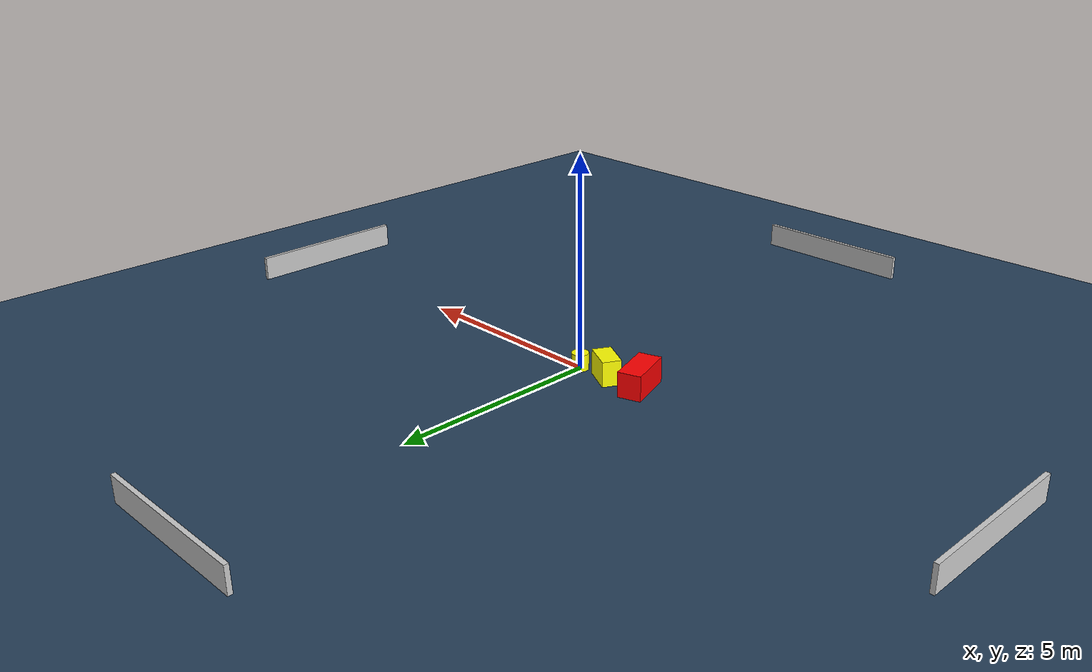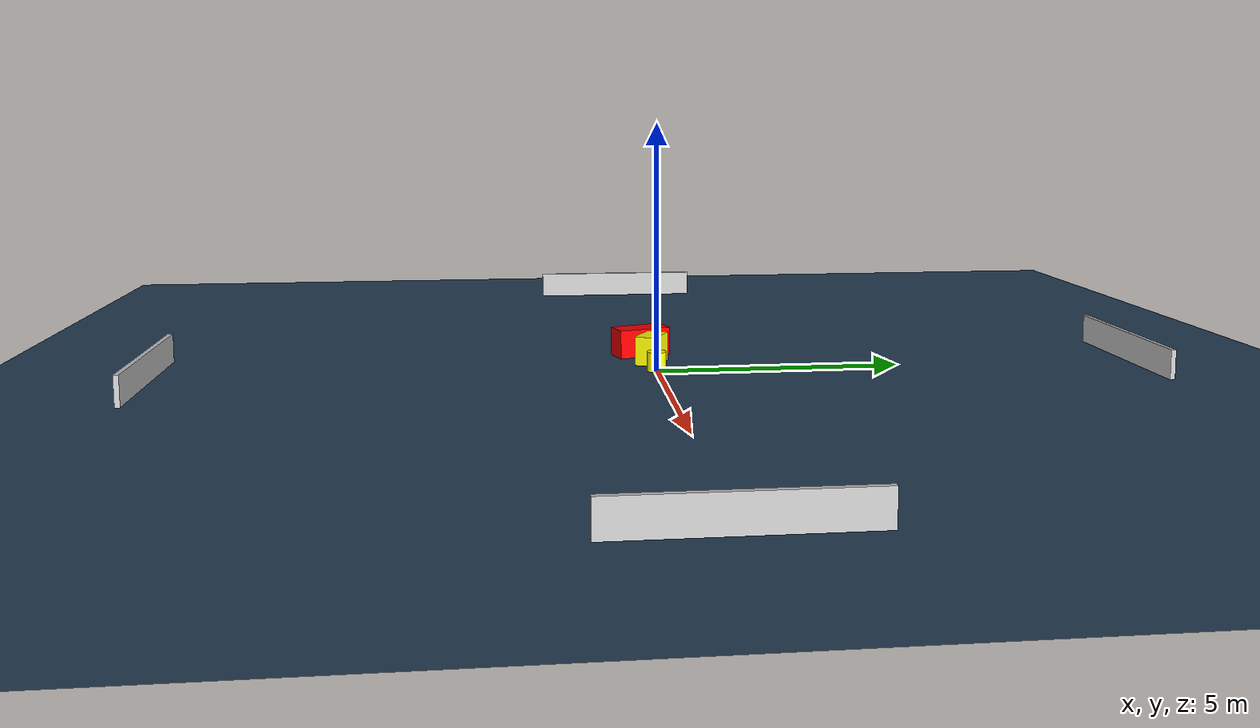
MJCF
<?xml version="1.0" ?>
<mujoco model="generated_environment">
  <option timestep="0.01" integrator="RK4" cone="elliptic"/>
  <default>
    <geom density="1"/>
  </default>
  <asset>
    <texture builtin="gradient" height="3072" name="skybox" rgb1="0.3 0.5 0.7" rgb2="0 0 0" type="skybox" width="512"/>
    <texture builtin="checker" height="300" name="groundplane" rgb1="0.2 0.3 0.4" rgb2="0.1 0.2 0.3" type="2d" width="300"/>
    <material name="groundplane" reflectance="0.2" texrepeat="5 5" texture="groundplane"/>
  </asset>
  <worldbody>
    <light dir="0 0 -1" directional="true" pos="0 0 1.5"/>
    <geom condim="3" friction="0.5 0.005 0.001" material="groundplane" name="floor" pos="0 0 0" size="0 0 0.05" type="plane"/>
    <body name="walls">
      <geom name="wall_1" condim="4" pos="-10.0 0.0 0.3" rgba="0.800000011920929 0.800000011920929 0.800000011920929 1.0" size="0.05 2.0 0.3" type="box"/>
      <geom name="wall_2" condim="4" pos="10.0 0.0 0.3" rgba="0.800000011920929 0.800000011920929 0.800000011920929 1.0" size="0.05 2.0 0.3" type="box"/>
      <geom name="wall_3" condim="4" pos="0.0 -10.0 0.3" rgba="0.800000011920929 0.800000011920929 0.800000011920929 1.0" size="2.0 0.05 0.3" type="box"/>
      <geom name="wall_4" condim="4" pos="0.0 10.0 0.3" rgba="0.800000011920929 0.800000011920929 0.800000011920929 1.0" size="2.0 0.05 0.3" type="box"/>
    </body>
    <body name="robot">
      <joint name="joint_x" type="slide" pos="0 0 0" axis="1 0 0"/>
      <joint name="joint_y" type="slide" pos="0 0 0" axis="0 1 0"/>
      <geom name="robot" type="cylinder" pos="0.0 0.0 0.2" size="0.2 0.2 0.0" mass="5.0" friction="1.0 0.005 0.0001" condim="4" rgba="1.0 1.0 0.0 1.0"/>
    </body>
    <body name="obstacle_1_movable">
      <geom name="obstacle_1_movable" condim="4" pos="-0.8066983686985927 -0.017207667561205585 0.3" euler="0 0 241.81630069995495" friction="0.0 0.005 0.001" rgba="1.0 1.0 0.0 1.0" size="0.2223613723950616 0.37790439584739555 0.3" type="box" mass="0.1"/>
      <joint type="free"/>
    </body>
    <body name="obstacle_2_static">
      <geom name="obstacle_2_static" condim="4" pos="-1.667036846718322 -0.16328032500074458 0.3" euler="0 0 108.07202539902585" friction="0.0 0.005 0.001" rgba="1.0 0.0 0.0 1.0" size="0.5665440107604782 0.27523653642572965 0.3" type="box"/>
    </body>
  </worldbody>
  <actuator>
    <motor name="actuator_x" joint="joint_x" gear="1" ctrlrange="-1 1"/>
    <motor name="actuator_y" joint="joint_y" gear="1" ctrlrange="-1 1"/>
  </actuator>
</mujoco>
